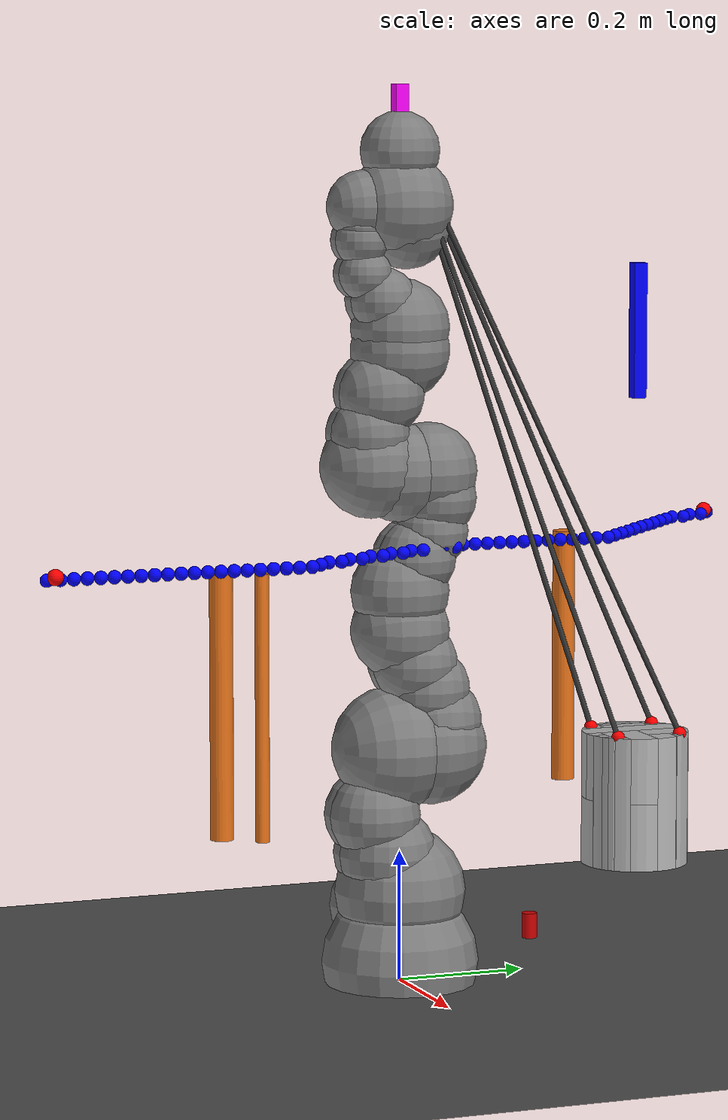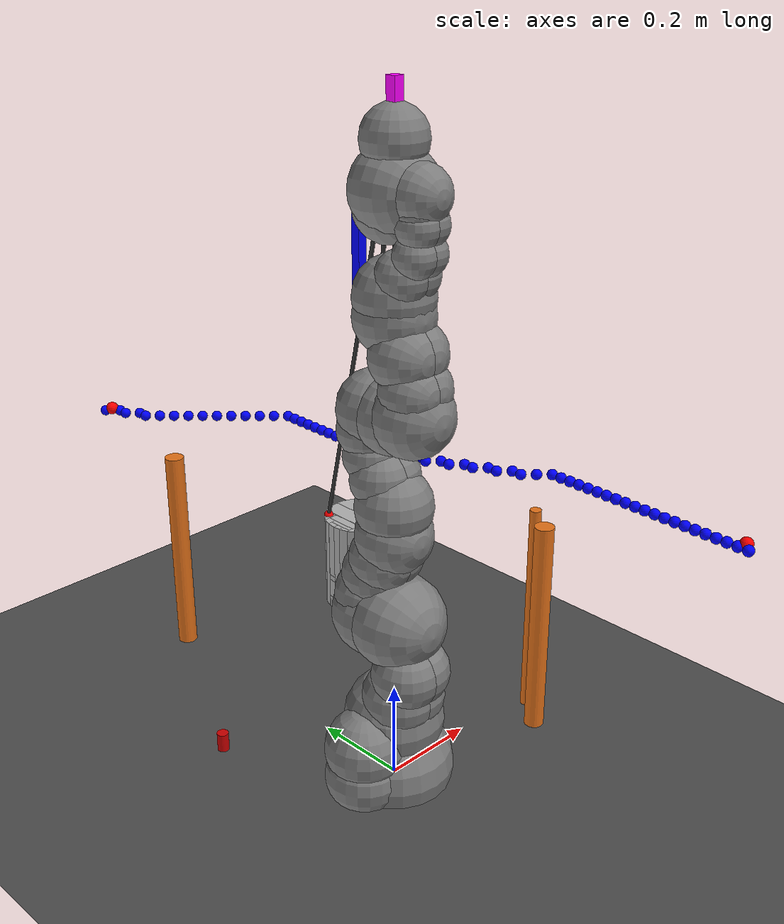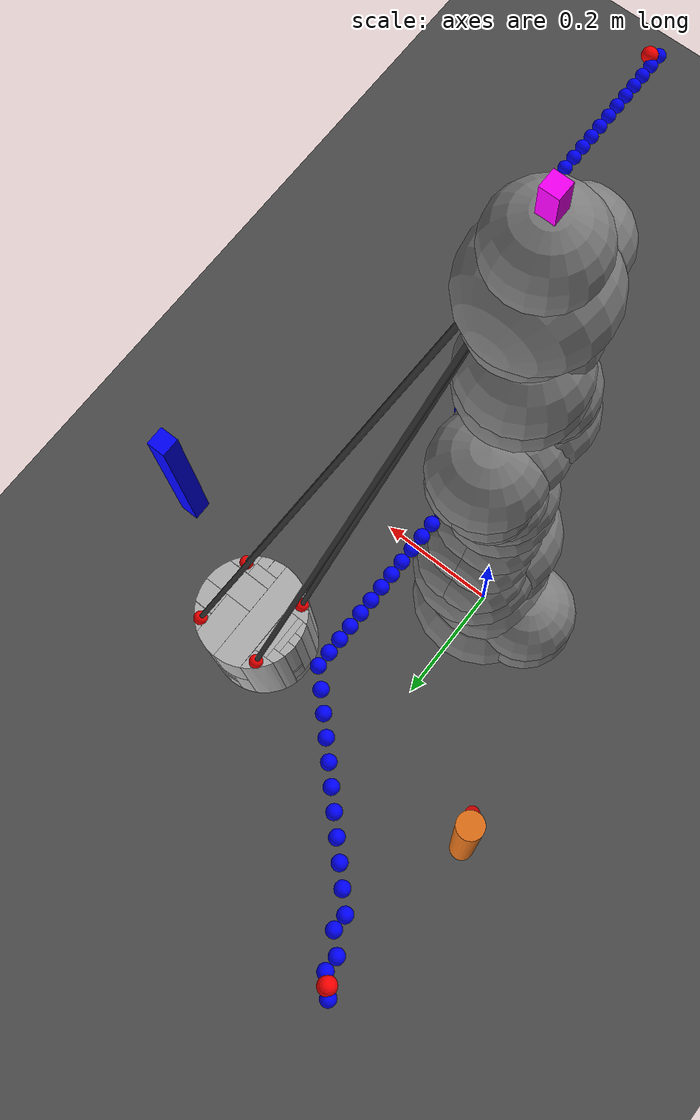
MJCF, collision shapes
<mujoco model="iiwa14_lifting_scene_sensors_compatible">

  <!-- 加载机械臂 -->
  <include file="iiwa14.xml"/>

  <option integrator="implicitfast" gravity="0 0 -9.81"/>

  <asset>
    <material name="groundplane" rgba="0.3 0.3 0.3 1"/>
    <material name="concrete" rgba="0.7 0.7 0.7 1.0"/>
    <material name="rope" rgba="0.2 0.2 0.2 1"/>
    <material name="red" rgba="0.8 0 0 1"/>
    <material name="steel" rgba="0.6 0.6 0.6 1"/>
    <material name="obstacle" rgba="0.9 0.45 0.1 1"/>

    <mesh name="hollow_cylinder_convex_0"  file="hollow_cylinder_convex_0.stl"/>
    <mesh name="hollow_cylinder_convex_1"  file="hollow_cylinder_convex_1.stl"/>
    <mesh name="hollow_cylinder_convex_2"  file="hollow_cylinder_convex_2.stl"/>
    <mesh name="hollow_cylinder_convex_3"  file="hollow_cylinder_convex_3.stl"/>
    <mesh name="hollow_cylinder_convex_4"  file="hollow_cylinder_convex_4.stl"/>
    <mesh name="hollow_cylinder_convex_5"  file="hollow_cylinder_convex_5.stl"/>
    <mesh name="hollow_cylinder_convex_6"  file="hollow_cylinder_convex_6.stl"/>
    <mesh name="hollow_cylinder_convex_7"  file="hollow_cylinder_convex_7.stl"/>
    <mesh name="hollow_cylinder_convex_8"  file="hollow_cylinder_convex_8.stl"/>
    <mesh name="hollow_cylinder_convex_9"  file="hollow_cylinder_convex_9.stl"/>
    <mesh name="hollow_cylinder_convex_10"  file="hollow_cylinder_convex_10.stl"/>
    <mesh name="hollow_cylinder_convex_11"  file="hollow_cylinder_convex_11.stl"/>
    <mesh name="hollow_cylinder_convex_12"  file="hollow_cylinder_convex_12.stl"/>
    <mesh name="hollow_cylinder_convex_13"  file="hollow_cylinder_convex_13.stl"/>
    <mesh name="hollow_cylinder_convex_14"  file="hollow_cylinder_convex_14.stl"/>
    <mesh name="hollow_cylinder_convex_15"  file="hollow_cylinder_convex_15.stl"/>
    <mesh name="hollow_cylinder_convex_16"  file="hollow_cylinder_convex_16.stl"/>
    <mesh name="hollow_cylinder_convex_17"  file="hollow_cylinder_convex_17.stl"/>
    <mesh name="hollow_cylinder_convex_18"  file="hollow_cylinder_convex_18.stl"/>
    <mesh name="hollow_cylinder_convex_19"  file="hollow_cylinder_convex_19.stl"/>
    <mesh name="hollow_cylinder_convex_20"  file="hollow_cylinder_convex_20.stl"/>
    <mesh name="hollow_cylinder_convex_21"  file="hollow_cylinder_convex_21.stl"/>
    <mesh name="hollow_cylinder_convex_22"  file="hollow_cylinder_convex_22.stl"/>
    <mesh name="hollow_cylinder_convex_23"  file="hollow_cylinder_convex_23.stl"/>
    <mesh name="hollow_cylinder_convex_24"  file="hollow_cylinder_convex_24.stl"/>
    <mesh name="hollow_cylinder_convex_25"  file="hollow_cylinder_convex_25.stl"/>
    <mesh name="hollow_cylinder_convex_26"  file="hollow_cylinder_convex_26.stl"/>
    <mesh name="hollow_cylinder_convex_27"  file="hollow_cylinder_convex_27.stl"/>
    <mesh name="hollow_cylinder_convex_28"  file="hollow_cylinder_convex_28.stl"/>
    <mesh name="hollow_cylinder_convex_29"  file="hollow_cylinder_convex_29.stl"/>
    <mesh name="hollow_cylinder_convex_30"  file="hollow_cylinder_convex_30.stl"/>
    <mesh name="hollow_cylinder_convex_31"  file="hollow_cylinder_convex_31.stl"/>
    <mesh name="hollow_cylinder_convex_32"  file="hollow_cylinder_convex_32.stl"/>
    <mesh name="hollow_cylinder_convex_33"  file="hollow_cylinder_convex_33.stl"/>
    <mesh name="hollow_cylinder_convex_34"  file="hollow_cylinder_convex_34.stl"/>
    <mesh name="hollow_cylinder_convex_35"  file="hollow_cylinder_convex_35.stl"/>
    <mesh name="hollow_cylinder_convex_36"  file="hollow_cylinder_convex_36.stl"/>
    <mesh name="hollow_cylinder_convex_37"  file="hollow_cylinder_convex_37.stl"/>
    <mesh name="hollow_cylinder_convex_38"  file="hollow_cylinder_convex_38.stl"/>
    <mesh name="hollow_cylinder_convex_39"  file="hollow_cylinder_convex_39.stl"/>
    <mesh name="hollow_cylinder_convex_40"  file="hollow_cylinder_convex_40.stl"/>
    <mesh name="hollow_cylinder_convex_41"  file="hollow_cylinder_convex_41.stl"/>
    <mesh name="hollow_cylinder_convex_42"  file="hollow_cylinder_convex_42.stl"/>
    <mesh name="hollow_cylinder_convex_43"  file="hollow_cylinder_convex_43.stl"/>
    <mesh name="hollow_cylinder_convex_44"  file="hollow_cylinder_convex_44.stl"/>
    <mesh name="hollow_cylinder_convex_45"  file="hollow_cylinder_convex_45.stl"/>
    <mesh name="hollow_cylinder_convex_46"  file="hollow_cylinder_convex_46.stl"/>
    <mesh name="hollow_cylinder_convex_47"  file="hollow_cylinder_convex_47.stl"/>
    <mesh name="hollow_cylinder_convex_48"  file="hollow_cylinder_convex_48.stl"/>
    <mesh name="hollow_cylinder_convex_49"  file="hollow_cylinder_convex_49.stl"/>
    <mesh name="hollow_cylinder_convex_50"  file="hollow_cylinder_convex_50.stl"/>
    <mesh name="hollow_cylinder_convex_51"  file="hollow_cylinder_convex_51.stl"/>
    <mesh name="hollow_cylinder_convex_52"  file="hollow_cylinder_convex_52.stl"/>
    <mesh name="hollow_cylinder_convex_53"  file="hollow_cylinder_convex_53.stl"/>
    <mesh name="hollow_cylinder_convex_54"  file="hollow_cylinder_convex_54.stl"/>
    <mesh name="hollow_cylinder_convex_55"  file="hollow_cylinder_convex_55.stl"/>
    <mesh name="hollow_cylinder_convex_56"  file="hollow_cylinder_convex_56.stl"/>
    <mesh name="hollow_cylinder_convex_57"  file="hollow_cylinder_convex_57.stl"/>
    <mesh name="hollow_cylinder_convex_58"  file="hollow_cylinder_convex_58.stl"/>
    <mesh name="hollow_cylinder_convex_59"  file="hollow_cylinder_convex_59.stl"/>
    <mesh name="hollow_cylinder_convex_60"  file="hollow_cylinder_convex_60.stl"/>
    <mesh name="hollow_cylinder_convex_61"  file="hollow_cylinder_convex_61.stl"/>
    <mesh name="hollow_cylinder_convex_62"  file="hollow_cylinder_convex_62.stl"/>
    <mesh name="hollow_cylinder_convex_63" file="hollow_cylinder_convex_63.stl"/>
  </asset>

  <worldbody>
    <!-- 光照与地面 -->
    <light pos="1.5 0 1.5" dir="1 0 -1" directional="true"/>
    <geom name="floor" size="0 0 0.05" type="plane" material="groundplane"/>

    <!-- 路径障碍物 0 (静态) -->
    <body name="obstacle_0" pos="-0.221302832888795 0.36555054513897806 0.45">
      <geom type="cylinder" size="0.01778383497073762 0.2" pos="0 0 0" material="obstacle" contype="1" conaffinity="1"/>
    </body>

    <!-- 路径障碍物 1 (静态) -->
    <body name="obstacle_1" pos="0.0930782565070606 -0.25397778716914343 0.45">
      <geom type="cylinder" size="0.010438037657872289 0.2" pos="0 0 0" material="obstacle" contype="1" conaffinity="1"/>
    </body>

    <!-- 路径障碍物 2 (静态) -->
    <body name="obstacle_2" pos="0.05512162590106753 -0.30428926543659945 0.45">
      <geom type="cylinder" size="0.017447621559078173 0.2" pos="0 0 0" material="obstacle" contype="1" conaffinity="1"/>
    </body>

    <!-- 规划路径点 0 (可视化) -->
    <body name="path_pt_0" pos="0.19091333214046746 -0.6099999999999999 0.67">
      <geom type="sphere" size="0.01" rgba="0 0 1 1" contype="0" conaffinity="0"/>
    </body>

    <!-- 规划路径点 1 (可视化) -->
    <body name="path_pt_1" pos="0.19091333214046746 -0.5899999999999999 0.67">
      <geom type="sphere" size="0.01" rgba="0 0 1 1" contype="0" conaffinity="0"/>
    </body>

    <!-- 规划路径点 2 (可视化) -->
    <body name="path_pt_2" pos="0.19091333214046746 -0.5699999999999998 0.67">
      <geom type="sphere" size="0.01" rgba="0 0 1 1" contype="0" conaffinity="0"/>
    </body>

    <!-- 规划路径点 3 (可视化) -->
    <body name="path_pt_3" pos="0.19091333214046746 -0.5499999999999998 0.67">
      <geom type="sphere" size="0.01" rgba="0 0 1 1" contype="0" conaffinity="0"/>
    </body>

    <!-- 规划路径点 4 (可视化) -->
    <body name="path_pt_4" pos="0.19091333214046746 -0.5299999999999999 0.67">
      <geom type="sphere" size="0.01" rgba="0 0 1 1" contype="0" conaffinity="0"/>
    </body>

    <!-- 规划路径点 5 (可视化) -->
    <body name="path_pt_5" pos="0.19091333214046746 -0.5099999999999999 0.67">
      <geom type="sphere" size="0.01" rgba="0 0 1 1" contype="0" conaffinity="0"/>
    </body>

    <!-- 规划路径点 6 (可视化) -->
    <body name="path_pt_6" pos="0.19091333214046746 -0.4899999999999999 0.67">
      <geom type="sphere" size="0.01" rgba="0 0 1 1" contype="0" conaffinity="0"/>
    </body>

    <!-- 规划路径点 7 (可视化) -->
    <body name="path_pt_7" pos="0.19091333214046746 -0.4699999999999999 0.67">
      <geom type="sphere" size="0.01" rgba="0 0 1 1" contype="0" conaffinity="0"/>
    </body>

    <!-- 规划路径点 8 (可视化) -->
    <body name="path_pt_8" pos="0.19091333214046746 -0.4499999999999999 0.67">
      <geom type="sphere" size="0.01" rgba="0 0 1 1" contype="0" conaffinity="0"/>
    </body>

    <!-- 规划路径点 9 (可视化) -->
    <body name="path_pt_9" pos="0.19091333214046746 -0.4299999999999999 0.67">
      <geom type="sphere" size="0.01" rgba="0 0 1 1" contype="0" conaffinity="0"/>
    </body>

    <!-- 规划路径点 10 (可视化) -->
    <body name="path_pt_10" pos="0.19091333214046746 -0.4099999999999999 0.67">
      <geom type="sphere" size="0.01" rgba="0 0 1 1" contype="0" conaffinity="0"/>
    </body>

    <!-- 规划路径点 11 (可视化) -->
    <body name="path_pt_11" pos="0.19091333214046746 -0.3899999999999999 0.67">
      <geom type="sphere" size="0.01" rgba="0 0 1 1" contype="0" conaffinity="0"/>
    </body>

    <!-- 规划路径点 12 (可视化) -->
    <body name="path_pt_12" pos="0.19091333214046746 -0.3699999999999999 0.67">
      <geom type="sphere" size="0.01" rgba="0 0 1 1" contype="0" conaffinity="0"/>
    </body>

    <!-- 规划路径点 13 (可视化) -->
    <body name="path_pt_13" pos="0.19091333214046746 -0.34999999999999987 0.67">
      <geom type="sphere" size="0.01" rgba="0 0 1 1" contype="0" conaffinity="0"/>
    </body>

    <!-- 规划路径点 14 (可视化) -->
    <body name="path_pt_14" pos="0.19091333214046746 -0.32999999999999985 0.67">
      <geom type="sphere" size="0.01" rgba="0 0 1 1" contype="0" conaffinity="0"/>
    </body>

    <!-- 规划路径点 15 (可视化) -->
    <body name="path_pt_15" pos="0.19091333214046746 -0.30999999999999994 0.67">
      <geom type="sphere" size="0.01" rgba="0 0 1 1" contype="0" conaffinity="0"/>
    </body>

    <!-- 规划路径点 16 (可视化) -->
    <body name="path_pt_16" pos="0.19091333214046746 -0.2899999999999999 0.67">
      <geom type="sphere" size="0.01" rgba="0 0 1 1" contype="0" conaffinity="0"/>
    </body>

    <!-- 规划路径点 17 (可视化) -->
    <body name="path_pt_17" pos="0.19091333214046746 -0.2699999999999999 0.67">
      <geom type="sphere" size="0.01" rgba="0 0 1 1" contype="0" conaffinity="0"/>
    </body>

    <!-- 规划路径点 18 (可视化) -->
    <body name="path_pt_18" pos="0.19091333214046746 -0.2499999999999999 0.67">
      <geom type="sphere" size="0.01" rgba="0 0 1 1" contype="0" conaffinity="0"/>
    </body>

    <!-- 规划路径点 19 (可视化) -->
    <body name="path_pt_19" pos="0.19091333214046746 -0.22999999999999987 0.67">
      <geom type="sphere" size="0.01" rgba="0 0 1 1" contype="0" conaffinity="0"/>
    </body>

    <!-- 规划路径点 20 (可视化) -->
    <body name="path_pt_20" pos="0.19091333214046746 -0.20999999999999985 0.67">
      <geom type="sphere" size="0.01" rgba="0 0 1 1" contype="0" conaffinity="0"/>
    </body>

    <!-- 规划路径点 21 (可视化) -->
    <body name="path_pt_21" pos="0.17091333214046744 -0.18999999999999995 0.67">
      <geom type="sphere" size="0.01" rgba="0 0 1 1" contype="0" conaffinity="0"/>
    </body>

    <!-- 规划路径点 22 (可视化) -->
    <body name="path_pt_22" pos="0.15091333214046743 -0.16999999999999993 0.67">
      <geom type="sphere" size="0.01" rgba="0 0 1 1" contype="0" conaffinity="0"/>
    </body>

    <!-- 规划路径点 23 (可视化) -->
    <body name="path_pt_23" pos="0.15091333214046743 -0.1499999999999999 0.67">
      <geom type="sphere" size="0.01" rgba="0 0 1 1" contype="0" conaffinity="0"/>
    </body>

    <!-- 规划路径点 24 (可视化) -->
    <body name="path_pt_24" pos="0.1309133321404674 -0.1299999999999999 0.67">
      <geom type="sphere" size="0.01" rgba="0 0 1 1" contype="0" conaffinity="0"/>
    </body>

    <!-- 规划路径点 25 (可视化) -->
    <body name="path_pt_25" pos="0.1309133321404674 -0.10999999999999988 0.67">
      <geom type="sphere" size="0.01" rgba="0 0 1 1" contype="0" conaffinity="0"/>
    </body>

    <!-- 规划路径点 26 (可视化) -->
    <body name="path_pt_26" pos="0.11091333214046739 -0.08999999999999986 0.67">
      <geom type="sphere" size="0.01" rgba="0 0 1 1" contype="0" conaffinity="0"/>
    </body>

    <!-- 规划路径点 27 (可视化) -->
    <body name="path_pt_27" pos="0.11091333214046739 -0.06999999999999984 0.67">
      <geom type="sphere" size="0.01" rgba="0 0 1 1" contype="0" conaffinity="0"/>
    </body>

    <!-- 规划路径点 28 (可视化) -->
    <body name="path_pt_28" pos="0.09091333214046737 -0.04999999999999993 0.67">
      <geom type="sphere" size="0.01" rgba="0 0 1 1" contype="0" conaffinity="0"/>
    </body>

    <!-- 规划路径点 29 (可视化) -->
    <body name="path_pt_29" pos="0.09091333214046737 -0.029999999999999916 0.67">
      <geom type="sphere" size="0.01" rgba="0 0 1 1" contype="0" conaffinity="0"/>
    </body>

    <!-- 规划路径点 30 (可视化) -->
    <body name="path_pt_30" pos="0.07091333214046747 -0.009999999999999898 0.67">
      <geom type="sphere" size="0.01" rgba="0 0 1 1" contype="0" conaffinity="0"/>
    </body>

    <!-- 规划路径点 31 (可视化) -->
    <body name="path_pt_31" pos="0.07091333214046747 0.01000000000000012 0.67">
      <geom type="sphere" size="0.01" rgba="0 0 1 1" contype="0" conaffinity="0"/>
    </body>

    <!-- 规划路径点 32 (可视化) -->
    <body name="path_pt_32" pos="0.05091333214046745 0.030000000000000138 0.67">
      <geom type="sphere" size="0.01" rgba="0 0 1 1" contype="0" conaffinity="0"/>
    </body>

    <!-- 规划路径点 33 (可视化) -->
    <body name="path_pt_33" pos="0.05091333214046745 0.050000000000000155 0.67">
      <geom type="sphere" size="0.01" rgba="0 0 1 1" contype="0" conaffinity="0"/>
    </body>

    <!-- 规划路径点 34 (可视化) -->
    <body name="path_pt_34" pos="0.05091333214046745 0.07000000000000006 0.67">
      <geom type="sphere" size="0.01" rgba="0 0 1 1" contype="0" conaffinity="0"/>
    </body>

    <!-- 规划路径点 35 (可视化) -->
    <body name="path_pt_35" pos="0.03091333214046743 0.09000000000000008 0.67">
      <geom type="sphere" size="0.01" rgba="0 0 1 1" contype="0" conaffinity="0"/>
    </body>

    <!-- 规划路径点 36 (可视化) -->
    <body name="path_pt_36" pos="0.03091333214046743 0.1100000000000001 0.67">
      <geom type="sphere" size="0.01" rgba="0 0 1 1" contype="0" conaffinity="0"/>
    </body>

    <!-- 规划路径点 37 (可视化) -->
    <body name="path_pt_37" pos="0.03091333214046743 0.13000000000000012 0.67">
      <geom type="sphere" size="0.01" rgba="0 0 1 1" contype="0" conaffinity="0"/>
    </body>

    <!-- 规划路径点 38 (可视化) -->
    <body name="path_pt_38" pos="0.03091333214046743 0.15000000000000013 0.67">
      <geom type="sphere" size="0.01" rgba="0 0 1 1" contype="0" conaffinity="0"/>
    </body>

    <!-- 规划路径点 39 (可视化) -->
    <body name="path_pt_39" pos="0.03091333214046743 0.17000000000000015 0.67">
      <geom type="sphere" size="0.01" rgba="0 0 1 1" contype="0" conaffinity="0"/>
    </body>

    <!-- 规划路径点 40 (可视化) -->
    <body name="path_pt_40" pos="0.03091333214046743 0.19000000000000017 0.67">
      <geom type="sphere" size="0.01" rgba="0 0 1 1" contype="0" conaffinity="0"/>
    </body>

    <!-- 规划路径点 41 (可视化) -->
    <body name="path_pt_41" pos="0.03091333214046743 0.2100000000000002 0.67">
      <geom type="sphere" size="0.01" rgba="0 0 1 1" contype="0" conaffinity="0"/>
    </body>

    <!-- 规划路径点 42 (可视化) -->
    <body name="path_pt_42" pos="0.03091333214046743 0.2300000000000002 0.67">
      <geom type="sphere" size="0.01" rgba="0 0 1 1" contype="0" conaffinity="0"/>
    </body>

    <!-- 规划路径点 43 (可视化) -->
    <body name="path_pt_43" pos="0.03091333214046743 0.2500000000000002 0.67">
      <geom type="sphere" size="0.01" rgba="0 0 1 1" contype="0" conaffinity="0"/>
    </body>

    <!-- 规划路径点 44 (可视化) -->
    <body name="path_pt_44" pos="0.03091333214046743 0.27 0.67">
      <geom type="sphere" size="0.01" rgba="0 0 1 1" contype="0" conaffinity="0"/>
    </body>

    <!-- 规划路径点 45 (可视化) -->
    <body name="path_pt_45" pos="0.03091333214046743 0.29000000000000004 0.67">
      <geom type="sphere" size="0.01" rgba="0 0 1 1" contype="0" conaffinity="0"/>
    </body>

    <!-- 规划路径点 46 (可视化) -->
    <body name="path_pt_46" pos="0.03091333214046743 0.31000000000000005 0.67">
      <geom type="sphere" size="0.01" rgba="0 0 1 1" contype="0" conaffinity="0"/>
    </body>

    <!-- 规划路径点 47 (可视化) -->
    <body name="path_pt_47" pos="0.03091333214046743 0.33000000000000007 0.67">
      <geom type="sphere" size="0.01" rgba="0 0 1 1" contype="0" conaffinity="0"/>
    </body>

    <!-- 规划路径点 48 (可视化) -->
    <body name="path_pt_48" pos="0.010913332140467413 0.3500000000000001 0.67">
      <geom type="sphere" size="0.01" rgba="0 0 1 1" contype="0" conaffinity="0"/>
    </body>

    <!-- 规划路径点 49 (可视化) -->
    <body name="path_pt_49" pos="-0.009086667859532604 0.3700000000000001 0.67">
      <geom type="sphere" size="0.01" rgba="0 0 1 1" contype="0" conaffinity="0"/>
    </body>

    <!-- 规划路径点 50 (可视化) -->
    <body name="path_pt_50" pos="-0.029086667859532622 0.3900000000000001 0.67">
      <geom type="sphere" size="0.01" rgba="0 0 1 1" contype="0" conaffinity="0"/>
    </body>

    <!-- 规划路径点 51 (可视化) -->
    <body name="path_pt_51" pos="-0.04908666785953253 0.41000000000000014 0.67">
      <geom type="sphere" size="0.01" rgba="0 0 1 1" contype="0" conaffinity="0"/>
    </body>

    <!-- 规划路径点 52 (可视化) -->
    <body name="path_pt_52" pos="-0.06908666785953255 0.43000000000000016 0.67">
      <geom type="sphere" size="0.01" rgba="0 0 1 1" contype="0" conaffinity="0"/>
    </body>

    <!-- 规划路径点 53 (可视化) -->
    <body name="path_pt_53" pos="-0.08908666785953256 0.4500000000000002 0.67">
      <geom type="sphere" size="0.01" rgba="0 0 1 1" contype="0" conaffinity="0"/>
    </body>

    <!-- 规划路径点 54 (可视化) -->
    <body name="path_pt_54" pos="-0.10908666785953258 0.4700000000000002 0.67">
      <geom type="sphere" size="0.01" rgba="0 0 1 1" contype="0" conaffinity="0"/>
    </body>

    <!-- 规划路径点 55 (可视化) -->
    <body name="path_pt_55" pos="-0.1290866678595326 0.4900000000000002 0.67">
      <geom type="sphere" size="0.01" rgba="0 0 1 1" contype="0" conaffinity="0"/>
    </body>

    <!-- 规划路径点 56 (可视化) -->
    <body name="path_pt_56" pos="-0.14908666785953256 0.51 0.67">
      <geom type="sphere" size="0.01" rgba="0 0 1 1" contype="0" conaffinity="0"/>
    </body>

    <!-- 规划路径点 57 (可视化) -->
    <body name="path_pt_57" pos="-0.16908666785953258 0.53 0.67">
      <geom type="sphere" size="0.01" rgba="0 0 1 1" contype="0" conaffinity="0"/>
    </body>

    <!-- 规划路径点 58 (可视化) -->
    <body name="path_pt_58" pos="-0.16908666785953258 0.55 0.67">
      <geom type="sphere" size="0.01" rgba="0 0 1 1" contype="0" conaffinity="0"/>
    </body>

    <!-- 规划路径点 59 (可视化) -->
    <body name="path_pt_59" pos="-0.1890866678595326 0.5700000000000001 0.67">
      <geom type="sphere" size="0.01" rgba="0 0 1 1" contype="0" conaffinity="0"/>
    </body>

    <!-- 规划路径点 60 (可视化) -->
    <body name="path_pt_60" pos="-0.1890866678595326 0.5900000000000001 0.67">
      <geom type="sphere" size="0.01" rgba="0 0 1 1" contype="0" conaffinity="0"/>
    </body>

    <!-- 规划路径点 61 (可视化) -->
    <body name="path_pt_61" pos="-0.20908666785953256 0.6100000000000001 0.67">
      <geom type="sphere" size="0.01" rgba="0 0 1 1" contype="0" conaffinity="0"/>
    </body>

    <!-- 规划起点 (可视化) -->
    <body name="path_start" pos="0.2 -0.6 0.675">
      <geom type="sphere" size="0.012" rgba="1 0 0 1" contype="0" conaffinity="0"/>
    </body>

    <!-- 规划终点 (可视化) -->
    <body name="path_goal" pos="-0.2 0.6 0.675">
      <geom type="sphere" size="0.012" rgba="1 0 0 1" contype="0" conaffinity="0"/>
    </body>

    <!--  固定钢筋 -->
    <body name="rebar_base" pos="-0.2 0.3 0">
      <geom type="cylinder" size="0.012 0.02" pos=" 0 0 0.02" material="red" contype="1" conaffinity="1"/>
    </body>

    <!-- 吊装构件 -->
    <body name="prefab" pos="0.2 0.3 0.3">
      <joint type="free"/>
      <geom type="mesh" mesh="hollow_cylinder_convex_0" material="concrete" mass="0.0156"/>
      <geom type="mesh" mesh="hollow_cylinder_convex_1" material="concrete" mass="0.0156"/>
      <geom type="mesh" mesh="hollow_cylinder_convex_2" material="concrete" mass="0.0156"/>
      <geom type="mesh" mesh="hollow_cylinder_convex_3" material="concrete" mass="0.0156"/>
      <geom type="mesh" mesh="hollow_cylinder_convex_4" material="concrete" mass="0.0156"/>
      <geom type="mesh" mesh="hollow_cylinder_convex_5" material="concrete" mass="0.0156"/>
      <geom type="mesh" mesh="hollow_cylinder_convex_6" material="concrete" mass="0.0156"/>
      <geom type="mesh" mesh="hollow_cylinder_convex_7" material="concrete" mass="0.0156"/>
      <geom type="mesh" mesh="hollow_cylinder_convex_8" material="concrete" mass="0.0156"/>
      <geom type="mesh" mesh="hollow_cylinder_convex_9" material="concrete" mass="0.0156"/>
      <geom type="mesh" mesh="hollow_cylinder_convex_10" material="concrete" mass="0.0156"/>
      <geom type="mesh" mesh="hollow_cylinder_convex_11" material="concrete" mass="0.0156"/>
      <geom type="mesh" mesh="hollow_cylinder_convex_12" material="concrete" mass="0.0156"/>
      <geom type="mesh" mesh="hollow_cylinder_convex_13" material="concrete" mass="0.0156"/>
      <geom type="mesh" mesh="hollow_cylinder_convex_14" material="concrete" mass="0.0156"/>
      <geom type="mesh" mesh="hollow_cylinder_convex_15" material="concrete" mass="0.0156"/>
      <geom type="mesh" mesh="hollow_cylinder_convex_16" material="concrete" mass="0.0156"/>
      <geom type="mesh" mesh="hollow_cylinder_convex_17" material="concrete" mass="0.0156"/>
      <geom type="mesh" mesh="hollow_cylinder_convex_18" material="concrete" mass="0.0156"/>
      <geom type="mesh" mesh="hollow_cylinder_convex_19" material="concrete" mass="0.0156"/>
      <geom type="mesh" mesh="hollow_cylinder_convex_20" material="concrete" mass="0.0156"/>
      <geom type="mesh" mesh="hollow_cylinder_convex_21" material="concrete" mass="0.0156"/>
      <geom type="mesh" mesh="hollow_cylinder_convex_22" material="concrete" mass="0.0156"/>
      <geom type="mesh" mesh="hollow_cylinder_convex_23" material="concrete" mass="0.0156"/>
      <geom type="mesh" mesh="hollow_cylinder_convex_24" material="concrete" mass="0.0156"/>
      <geom type="mesh" mesh="hollow_cylinder_convex_25" material="concrete" mass="0.0156"/>
      <geom type="mesh" mesh="hollow_cylinder_convex_26" material="concrete" mass="0.0156"/>
      <geom type="mesh" mesh="hollow_cylinder_convex_27" material="concrete" mass="0.0156"/>
      <geom type="mesh" mesh="hollow_cylinder_convex_28" material="concrete" mass="0.0156"/>
      <geom type="mesh" mesh="hollow_cylinder_convex_29" material="concrete" mass="0.0156"/>
      <geom type="mesh" mesh="hollow_cylinder_convex_30" material="concrete" mass="0.0156"/>
      <geom type="mesh" mesh="hollow_cylinder_convex_31" material="concrete" mass="0.0156"/>
      <geom type="mesh" mesh="hollow_cylinder_convex_32" material="concrete" mass="0.0156"/>
      <geom type="mesh" mesh="hollow_cylinder_convex_33" material="concrete" mass="0.0156"/>
      <geom type="mesh" mesh="hollow_cylinder_convex_34" material="concrete" mass="0.0156"/>
      <geom type="mesh" mesh="hollow_cylinder_convex_35" material="concrete" mass="0.0156"/>
      <geom type="mesh" mesh="hollow_cylinder_convex_36" material="concrete" mass="0.0156"/>
      <geom type="mesh" mesh="hollow_cylinder_convex_37" material="concrete" mass="0.0156"/>
      <geom type="mesh" mesh="hollow_cylinder_convex_38" material="concrete" mass="0.0156"/>
      <geom type="mesh" mesh="hollow_cylinder_convex_39" material="concrete" mass="0.0156"/>
      <geom type="mesh" mesh="hollow_cylinder_convex_40" material="concrete" mass="0.0156"/>
      <geom type="mesh" mesh="hollow_cylinder_convex_41" material="concrete" mass="0.0156"/>
      <geom type="mesh" mesh="hollow_cylinder_convex_42" material="concrete" mass="0.0156"/>
      <geom type="mesh" mesh="hollow_cylinder_convex_43" material="concrete" mass="0.0156"/>
      <geom type="mesh" mesh="hollow_cylinder_convex_44" material="concrete" mass="0.0156"/>
      <geom type="mesh" mesh="hollow_cylinder_convex_45" material="concrete" mass="0.0156"/>
      <geom type="mesh" mesh="hollow_cylinder_convex_46" material="concrete" mass="0.0156"/>
      <geom type="mesh" mesh="hollow_cylinder_convex_47" material="concrete" mass="0.0156"/>
      <geom type="mesh" mesh="hollow_cylinder_convex_48" material="concrete" mass="0.0156"/>
      <geom type="mesh" mesh="hollow_cylinder_convex_49" material="concrete" mass="0.0156"/>
      <geom type="mesh" mesh="hollow_cylinder_convex_50" material="concrete" mass="0.0156"/>
      <geom type="mesh" mesh="hollow_cylinder_convex_51" material="concrete" mass="0.0156"/>
      <geom type="mesh" mesh="hollow_cylinder_convex_52" material="concrete" mass="0.0156"/>
      <geom type="mesh" mesh="hollow_cylinder_convex_53" material="concrete" mass="0.0156"/>
      <geom type="mesh" mesh="hollow_cylinder_convex_54" material="concrete" mass="0.0156"/>
      <geom type="mesh" mesh="hollow_cylinder_convex_55" material="concrete" mass="0.0156"/>
      <geom type="mesh" mesh="hollow_cylinder_convex_56" material="concrete" mass="0.0156"/>
      <geom type="mesh" mesh="hollow_cylinder_convex_57" material="concrete" mass="0.0156"/>
      <geom type="mesh" mesh="hollow_cylinder_convex_58" material="concrete" mass="0.0156"/>
      <geom type="mesh" mesh="hollow_cylinder_convex_59" material="concrete" mass="1"/>
      <geom type="mesh" mesh="hollow_cylinder_convex_60" material="concrete" mass="0.0156"/>
      <geom type="mesh" mesh="hollow_cylinder_convex_61" material="concrete" mass="0.0156"/>
      <geom type="mesh" mesh="hollow_cylinder_convex_62" material="concrete" mass="0.0156"/>
      <geom type="mesh" mesh="hollow_cylinder_convex_63" material="concrete" mass="0.0156"/>

      <!-- 四个吊点 -->
      <site name="lift_fl" pos=" 0.05  0.05  0.1" size="0.01" rgba="1 0 0 1"/>
      <site name="lift_fr" pos=" 0.05 -0.05  0.1" size="0.01" rgba="1 0 0 1"/>
      <site name="lift_rl" pos="-0.05  0.05  0.1" size="0.01" rgba="1 0 0 1"/>
      <site name="lift_rr" pos="-0.05 -0.05  0.1" size="0.01" rgba="1 0 0 1"/>

      <!-- ✅ IMU 传感器安装点 -->
      <site name="imu_site" pos="0 0 0" size="0.01" rgba="0 1 0 1"/>
    </body>

    <body mocap="true" name="mocap" pos="0.2 0.3 1.0" quat="0 0 1 0">
      <geom type="box" size="0.01 0.01 0.1" rgba="0 0 1 1"/>
    </body>

  </worldbody>

  <!-- 绑定挂点到机械臂末端 -->
  <equality>
      <weld body1="link7" body2="mocap"
            solimp="0.99 0.99 0.01"
            solref="0.001 1"
            relpose="0 0 0.045 1 0 0 0"/>
  </equality>

  <!-- 四根吊索 -->
  <tendon>
    <spatial name="rope_fl" limited="true" range="0 0.604152" width="0.004" material="rope" stiffness="8">
      <site site="attachment_site"/>
      <site site="lift_fl"/>
    </spatial>
    <spatial name="rope_fr" limited="true" range="0 0.604152" width="0.004" material="rope" stiffness="8">
      <site site="attachment_site"/>
      <site site="lift_fr"/>
    </spatial>
    <spatial name="rope_rl" limited="true" range="0 0.604152" width="0.004" material="rope" stiffness="8">
      <site site="attachment_site"/>
      <site site="lift_rl"/>
    </spatial>
    <spatial name="rope_rr" limited="true" range="0 0.604152" width="0.004" material="rope" stiffness="8">
      <site site="attachment_site"/>
      <site site="lift_rr"/>
    </spatial>
  </tendon>

  <sensor>
    <framepos name="prefab/pos" objtype="site" objname="imu_site"/>
    <framelinvel name="prefab/vel" objtype="site" objname="imu_site"/>
    <framepos name="end/pos" objtype="site" objname="attachment_site"/>
    <framelinvel name="end/vel" objtype="site" objname="attachment_site"/>
  </sensor>

  <keyframe>
    <key name="home" qpos="0.955545 0.391462 -2.86463 0.00599717 2.97003 2.37487 7.3179
                                 0.2 0.3 0.3  1 0 0 0"/>
  </keyframe>

</mujoco>

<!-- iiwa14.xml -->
<mujoco model="iiwa14">
  <compiler angle="radian" meshdir="assets" autolimits="true"/>
  <option integrator="implicitfast"/>

  <default>
    <default class="iiwa">
      <material specular="0.5" shininess="0.25"/>
      <joint axis="0 0 1" damping="1.2"/>
      <general gaintype="fixed" biastype="affine" gainprm="0" biasprm="0 -50 -5"/>
      <default class="joint1">
        <joint range="-2.96706 2.96706"/>
        <general ctrlrange="-2.96706 2.96706"/>
        <default class="joint2">
          <joint range="-2.0944 2.0944"/>
          <general ctrlrange="-2.0944 2.0944"/>
        </default>
      </default>
      <default class="joint3">
        <joint range="-3.05433 3.05433"/>
        <general ctrlrange="-3.05433 3.05433"/>
      </default>
      <default class="visual">
        <geom type="mesh" contype="0" conaffinity="0" group="2" material="gray"/>
      </default>
      <default class="collision">
        <geom group="3"/>
      </default>
      <site size="0.001" rgba="1 0 0 1" group="4"/>
    </default>
  </default>

  <asset>
    <material class="iiwa" name="gray" rgba="0.4 0.4 0.4 1"/>
    <material class="iiwa" name="light_gray" rgba="0.6 0.6 0.6 1"/>
    <material class="iiwa" name="black" rgba="0 0 0 1"/>
    <material class="iiwa" name="orange" rgba="1 0.423529 0.0392157 1"/>

    <mesh file="link_0.obj"/>
    <mesh file="link_1.obj"/>
    <mesh file="link_2_orange.obj"/>
    <mesh file="link_2_grey.obj"/>
    <mesh file="link_3.obj"/>
    <mesh file="band.obj"/>
    <mesh file="kuka.obj"/>
    <mesh file="link_4_orange.obj"/>
    <mesh file="link_4_grey.obj"/>
    <mesh file="link_5.obj"/>
    <mesh file="link_6_orange.obj"/>
    <mesh file="link_6_grey.obj"/>
    <mesh file="link_7.obj"/>
  </asset>

  <worldbody>
    <light name="top" pos="0 0 2" mode="trackcom"/>
    <body name="base" childclass="iiwa">
      <inertial mass="5" pos="-0.1 0 0.07" diaginertia="0.05 0.06 0.03"/>
      <geom class="visual" mesh="link_0"/>
      <geom class="collision" size="0.12" pos="0 0 0.03"/>
      <geom class="collision" size="0.08" pos="-0.08 0 0.103"/>
      <geom class="collision" size="0.08" pos="-0.08 0 0.04"/>
      <geom class="collision" size="0.1" pos="0 0 0.14"/>
      <body name="link1" pos="0 0 0.1575">
        <inertial mass="5.76" pos="0 -0.03 0.12" diaginertia="0.0333 0.033 0.0123"/>
        <joint name="joint1" class="joint1"/>
        <geom class="visual" mesh="link_1"/>
        <geom class="collision" size="0.08" pos="0 0 -0.0005"/>
        <geom class="collision" size="0.075" pos="0.01 -0.025 0.0425"/>
        <geom class="collision" size="0.075" pos="-0.01 -0.025 0.0425"/>
        <geom class="collision" size="0.07" pos="0.01 -0.045 0.1025"/>
        <geom class="collision" size="0.07" pos="-0.01 -0.045 0.1025"/>
        <body name="link2" pos="0 0 0.2025" quat="0 0 1 1">
          <inertial mass="6.35" pos="0.0003 0.059 0.042" diaginertia="0.0305 0.0304 0.011" quat="0 0 1 1"/>
          <joint name="joint2" class="joint2"/>
          <geom class="visual" material="orange" mesh="link_2_orange"/>
          <geom class="visual" mesh="link_2_grey"/>
          <geom class="collision" size="0.095" pos="0 0 -0.01"/>
          <geom class="collision" size="0.09" pos="0 0 0.045"/>
          <geom class="collision" size="0.07" pos="-0.01 0.04 0.054"/>
          <geom class="collision" size="0.065" pos="-0.01 0.09 0.04"/>
          <geom class="collision" size="0.065" pos="-0.01 0.13 0.02"/>
          <geom class="collision" size="0.07" pos="0.01 0.04 0.054"/>
          <geom class="collision" size="0.065" pos="0.01 0.09 0.04"/>
          <geom class="collision" size="0.065" pos="0.01 0.13 0.02"/>
          <geom class="collision" size="0.075" pos="0 0.18 0"/>
          <body name="link3" pos="0 0.2045 0" quat="0 0 1 1">
            <inertial mass="3.5" pos="0 0.03 0.13" diaginertia="0.025 0.0238 0.0076"/>
            <joint name="joint3" class="joint1"/>
            <geom class="visual" mesh="link_3"/>
            <geom class="visual" material="light_gray" mesh="band"/>
            <geom class="visual" material="black" mesh="kuka"/>
            <geom class="collision" size="0.075" pos="0 0 0.0355"/>
            <geom class="collision" size="0.06" pos="0.01 0.023 0.0855"/>
            <geom class="collision" size="0.055" pos="0.01 0.048 0.1255"/>
            <geom class="collision" size="0.06" pos="0.01 0.056 0.1755"/>
            <geom class="collision" size="0.06" pos="-0.01 0.023 0.0855"/>
            <geom class="collision" size="0.055" pos="-0.01 0.048 0.1255"/>
            <geom class="collision" size="0.06" pos="-0.01 0.056 0.1755"/>
            <geom class="collision" size="0.075" pos="0 0.045 0.2155"/>
            <geom class="collision" size="0.075" pos="0 0 0.2155"/>
            <body name="link4" pos="0 0 0.2155" quat="1 1 0 0">
              <inertial mass="3.5" pos="0 0.067 0.034" diaginertia="0.017 0.0164 0.006" quat="1 1 0 0"/>
              <joint name="joint4" class="joint2"/>
              <geom class="visual" material="orange" mesh="link_4_orange"/>
              <geom class="visual" mesh="link_4_grey"/>
              <geom class="collision" size="0.078" pos="0 0.01 0.046"/>
              <geom class="collision" size="0.06" pos="0.01 0.06 0.052"/>
              <geom class="collision" size="0.065" pos="0.01 0.12 0.034"/>
              <geom class="collision" size="0.06" pos="-0.01 0.06 0.052"/>
              <geom class="collision" size="0.065" pos="-0.01 0.12 0.034"/>
              <geom class="collision" size="0.075" pos="0 0.184 0"/>
              <body name="link5" pos="0 0.1845 0" quat="0 0 1 1">
                <inertial mass="3.5" pos="0.0001 0.021 0.076" diaginertia="0.01 0.0087 0.00449"/>
                <joint name="joint5" class="joint1"/>
                <geom class="visual" mesh="link_5"/>
                <geom class="visual" material="light_gray" mesh="band"/>
                <geom class="visual" material="black" mesh="kuka"/>
                <geom class="collision" size="0.075" pos="0 0 0.0335"/>
                <geom class="collision" size="0.05" pos="-0.012 0.031 0.0755"/>
                <geom class="collision" size="0.05" pos="0.012 0.031 0.0755"/>
                <geom class="collision" size="0.04" pos="-0.012 0.06 0.1155"/>
                <geom class="collision" size="0.04" pos="0.012 0.06 0.1155"/>
                <geom class="collision" size="0.04" pos="-0.01 0.065 0.1655"/>
                <geom class="collision" size="0.04" pos="0.01 0.065 0.1655"/>
                <geom class="collision" size="0.035" pos="-0.012 0.065 0.1855"/>
                <geom class="collision" size="0.035" pos="0.012 0.065 0.1855"/>
                <body name="link6" pos="0 0 0.2155" quat="1 1 0 0">
                  <inertial mass="1.8" pos="0 0.0006 0.0004" diaginertia="0.0049 0.0047 0.0036" quat="1 1 0 0"/>
                  <joint name="joint6" class="joint2"/>
                  <geom class="visual" material="orange" mesh="link_6_orange"/>
                  <geom class="visual" mesh="link_6_grey"/>
                  <geom class="collision" size="0.055" pos="0 0 -0.059"/>
                  <geom class="collision" size="0.065" pos="0 -0.03 0.011"/>
                  <geom class="collision" size="0.08"/>
                  <body name="link7" pos="0 0.081 0" quat="0 0 1 1">
                    <inertial mass="1.2" pos="0 0 0.02" diaginertia="0.001 0.001 0.001"/>
                    <joint name="joint7" class="joint3"/>
                    <geom class="visual" mesh="link_7"/>
                    <geom class="collision" size="0.06" pos="0 0 0.001"/>
                    <site pos="0 0 0.045" name="attachment_site" size="0.01" rgba="0 1 1 1" type="sphere" group="1"/>
                    <site pos="0 0 0" name="end_effector_site" type="box" size="0.01 0.01 0.1" rgba="1 0 1 1" group="1"/>
                  </body>
                </body>
              </body>
            </body>
          </body>
        </body>
      </body>
    </body>
  </worldbody>

  <contact>
    <exclude body1="base" body2="link1"/>
    <exclude body1="base" body2="link2"/>
    <exclude body1="base" body2="link3"/>
    <exclude body1="link1" body2="link3"/>
    <exclude body1="link3" body2="link5"/>
    <exclude body1="link4" body2="link7"/>
    <exclude body1="link5" body2="link7"/>
  </contact>

</mujoco>
